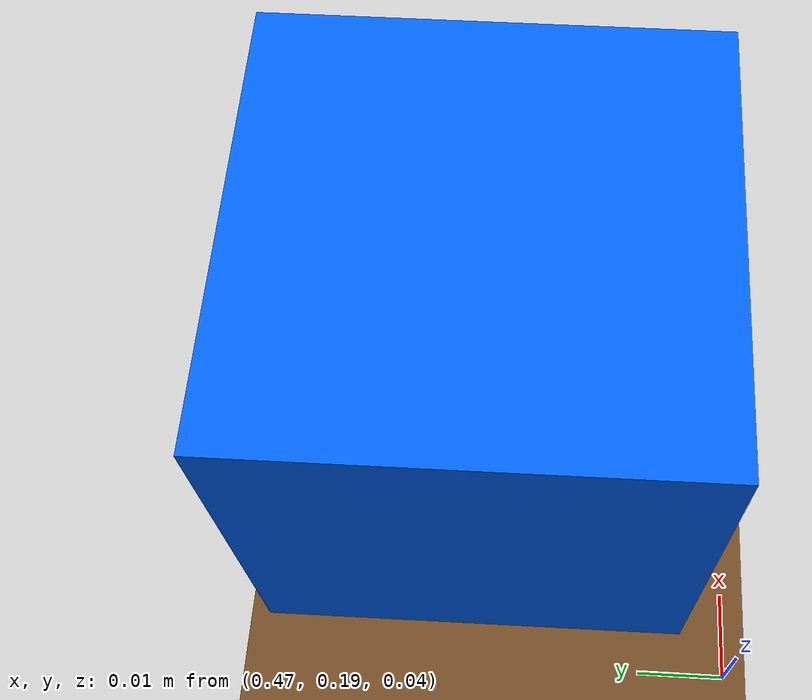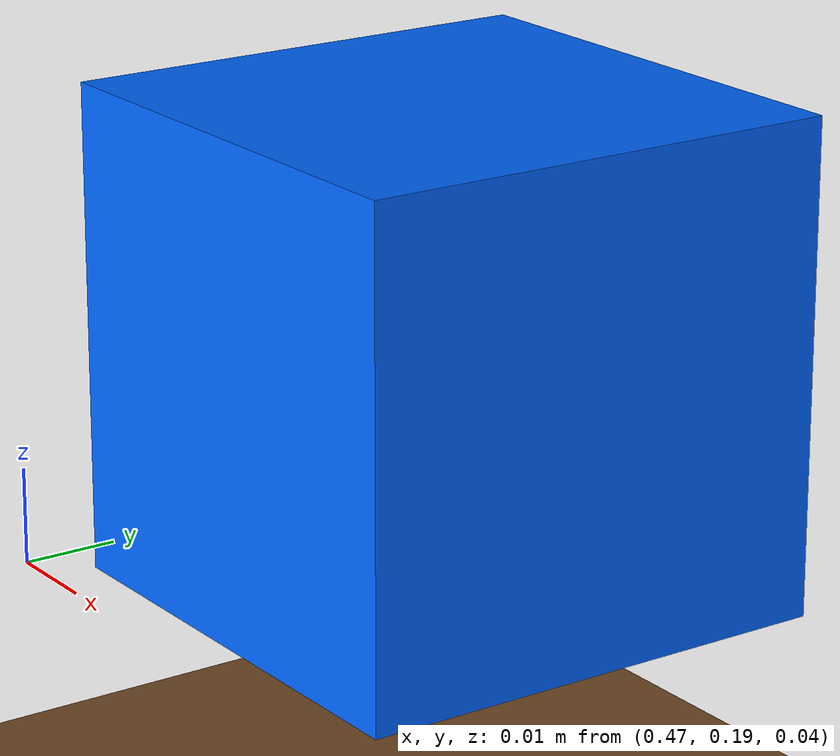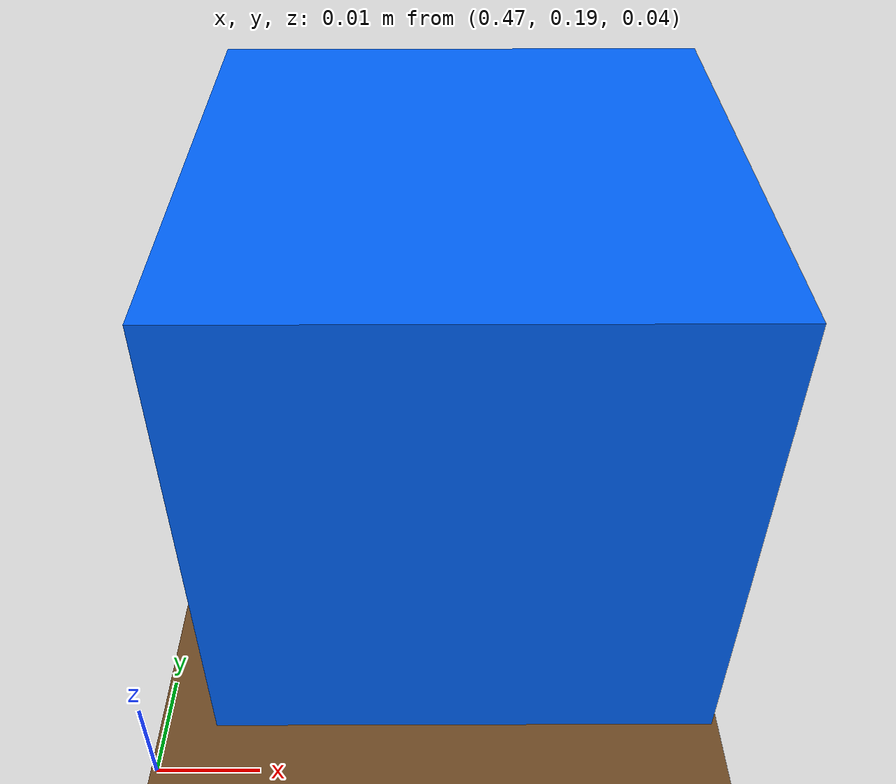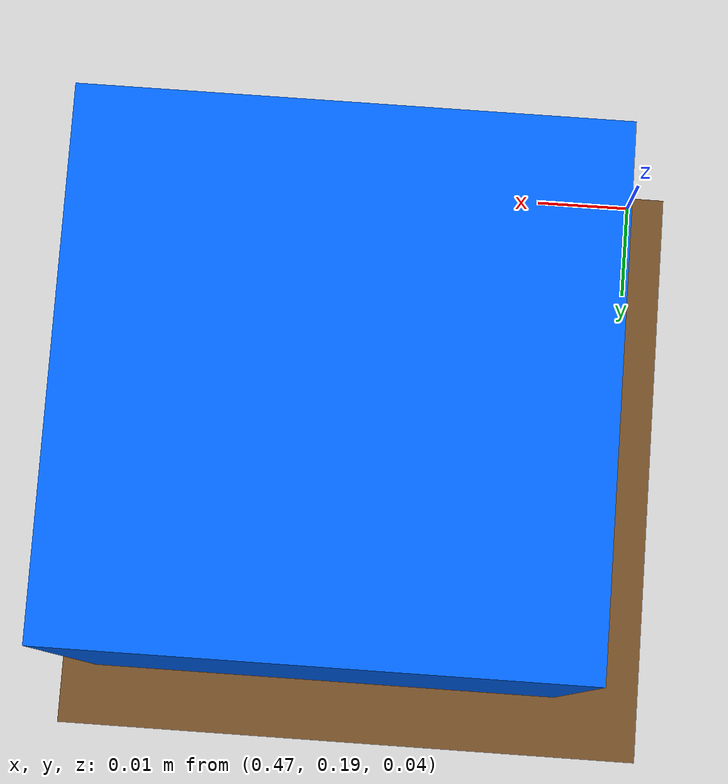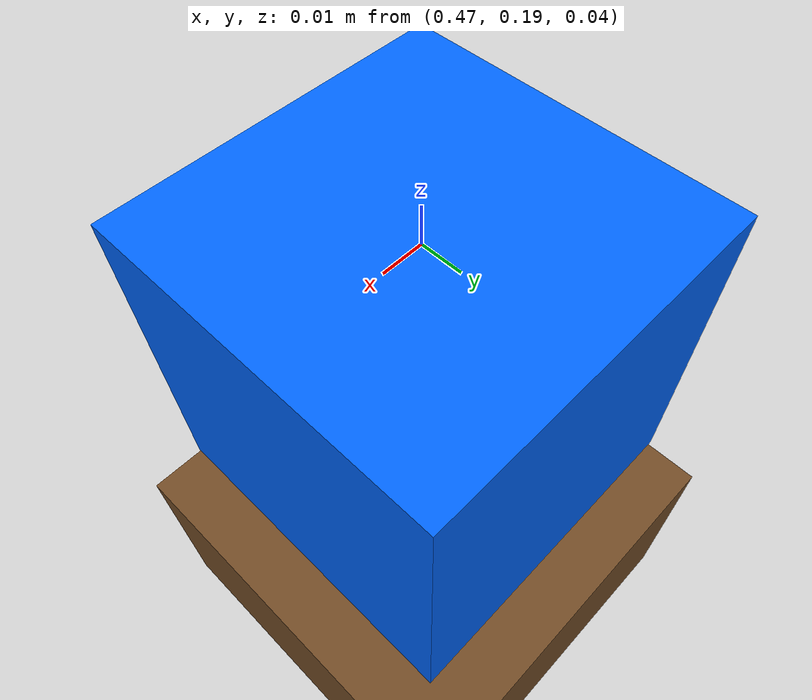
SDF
<?xml version="1.0" ?>
<sdf version="1.9">
  <world name="pick_place">
    <physics name="default_physics" type="dart">
      <max_step_size>0.001</max_step_size>
      <real_time_factor>1.0</real_time_factor>
    </physics>

    <plugin filename="gz-sim-physics-system" name="gz::sim::systems::Physics"/>
    <plugin filename="gz-sim-user-commands-system" name="gz::sim::systems::UserCommands"/>
    <plugin filename="gz-sim-scene-broadcaster-system" name="gz::sim::systems::SceneBroadcaster"/>
    <plugin filename="gz-sim-sensors-system" name="gz::sim::systems::Sensors">
      <render_engine>ogre2</render_engine>
    </plugin>

    <light type="directional" name="sun">
      <cast_shadows>true</cast_shadows>
      <pose>0 0 10 0 0 0</pose>
      <diffuse>0.8 0.8 0.8 1</diffuse>
      <specular>0.2 0.2 0.2 1</specular>
      <direction>-0.5 0.1 -0.9</direction>
    </light>

    <model name="ground_plane">
      <static>true</static>
      <link name="link">
        <collision name="collision">
          <geometry>
            <plane>
              <normal>0 0 1</normal>
              <size>100 100</size>
            </plane>
          </geometry>
        </collision>
        <visual name="visual">
          <geometry>
            <plane>
              <normal>0 0 1</normal>
              <size>100 100</size>
            </plane>
          </geometry>
          <material>
            <ambient>0.8 0.8 0.8 1</ambient>
            <diffuse>0.8 0.8 0.8 1</diffuse>
          </material>
        </visual>
      </link>
    </model>

    <!-- Table aligned with scene_objects_node layout -->
    <model name="table">
      <static>true</static>
      <pose>0.55 0.0 0.0 0 0 0</pose>
      <link name="link">
        <collision name="collision">
          <geometry>
            <box>
              <size>0.80 0.60 0.04</size>
            </box>
          </geometry>
        </collision>
        <visual name="visual">
          <geometry>
            <box>
              <size>0.80 0.60 0.04</size>
            </box>
          </geometry>
          <material>
            <ambient>0.45 0.30 0.15 1</ambient>
            <diffuse>0.45 0.30 0.15 1</diffuse>
          </material>
        </visual>
      </link>
    </model>

    <!-- Pick cube — dynamic rigid body -->
    <model name="pick_cube">
      <pose>0.50 0.22 0.065 0 0 0</pose>
      <link name="link">
        <inertial>
          <mass>0.05</mass>
          <inertia>
            <ixx>0.0001</ixx><ixy>0</ixy><ixz>0</ixz>
            <iyy>0.0001</iyy><iyz>0</iyz><izz>0.0001</izz>
          </inertia>
        </inertial>
        <collision name="collision">
          <geometry>
            <box>
              <size>0.05 0.05 0.05</size>
            </box>
          </geometry>
          <surface>
            <friction>
              <ode>
                <mu>1.2</mu>
                <mu2>1.2</mu2>
              </ode>
            </friction>
          </surface>
        </collision>
        <visual name="visual">
          <geometry>
            <box>
              <size>0.05 0.05 0.05</size>
            </box>
          </geometry>
          <material>
            <ambient>0.0 0.4 1.0 1</ambient>
            <diffuse>0.0 0.4 1.0 1</diffuse>
          </material>
        </visual>
      </link>
    </model>

    <!-- Fixed scene cameras for teleoperation (bridged to ROS via ros_gz_image) -->
    <model name="scene_camera_overview">
      <static>true</static>
      <pose>-0.9 0.0 1.35 0 0.55 0.0</pose>
      <link name="link">
        <sensor name="camera" type="camera">
          <camera>
            <horizontal_fov>1.05</horizontal_fov>
            <image><width>640</width><height>480</height></image>
            <clip><near>0.05</near><far>8.0</far></clip>
          </camera>
          <always_on>1</always_on>
          <update_rate>20</update_rate>
          <visualize>false</visualize>
          <topic>scene_camera_overview</topic>
        </sensor>
      </link>
    </model>

    <model name="scene_camera_side">
      <static>true</static>
      <pose>0.55 -1.05 0.95 0 0.45 1.5708</pose>
      <link name="link">
        <sensor name="camera" type="camera">
          <camera>
            <horizontal_fov>1.05</horizontal_fov>
            <image><width>640</width><height>480</height></image>
            <clip><near>0.05</near><far>8.0</far></clip>
          </camera>
          <always_on>1</always_on>
          <update_rate>20</update_rate>
          <visualize>false</visualize>
          <topic>scene_camera_side</topic>
        </sensor>
      </link>
    </model>

    <model name="scene_camera_gripper">
      <static>true</static>
      <pose>0.30 0.0 0.95 0 0.65 0.0</pose>
      <link name="link">
        <sensor name="camera" type="camera">
          <camera>
            <horizontal_fov>0.85</horizontal_fov>
            <image><width>640</width><height>480</height></image>
            <clip><near>0.03</near><far>4.0</far></clip>
          </camera>
          <always_on>1</always_on>
          <update_rate>20</update_rate>
          <visualize>false</visualize>
          <topic>scene_camera_gripper</topic>
        </sensor>
      </link>
    </model>

    <!-- Top-down view of table + pick cube (pose matches pick_cube at 0.50, 0.22) -->
    <model name="scene_camera_table_top">
      <static>true</static>
      <pose>0.50 0.22 1.10 0 1.5708 0.0</pose>
      <link name="link">
        <sensor name="camera" type="camera">
          <camera>
            <horizontal_fov>0.95</horizontal_fov>
            <image><width>640</width><height>480</height></image>
            <clip><near>0.05</near><far>3.0</far></clip>
          </camera>
          <always_on>1</always_on>
          <update_rate>20</update_rate>
          <visualize>false</visualize>
          <topic>scene_camera_table_top</topic>
        </sensor>
      </link>
    </model>
  </world>
</sdf>
